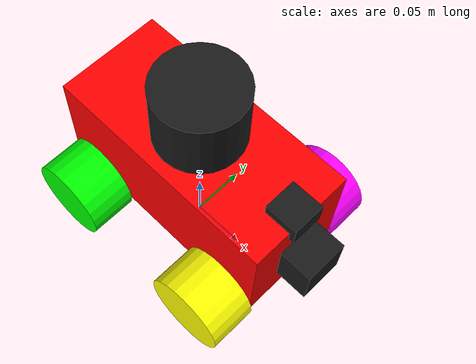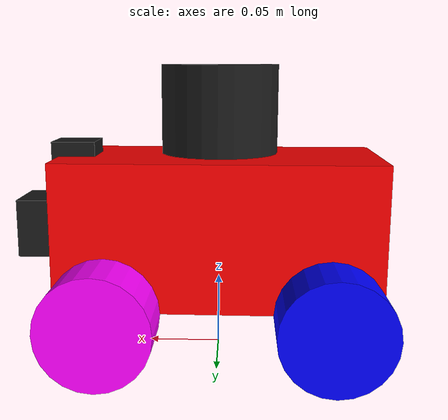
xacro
<?xml version="1.0"?>
<robot name="rrbot" xmlns:xacro="http://www.ros.org/wiki/xacro"
                    xmlns:gz="http://gazebosim.org/schema">

  <!-- ==================== PARAMETERS ==================== -->
  <!-- Pi constant -->
  <xacro:property name="pi_const" value="3.141592653589793"/>

  <!-- Body dimensions -->
  <xacro:property name="a" value="0.22"/>
  <xacro:property name="b" value="0.1"/>
  <xacro:property name="c" value="0.1"/>

  <!-- Wheel and caster dimensions -->
  <!-- Wheel and caster radius -->
  <xacro:property name="r" value="0.0375"/>
  <!-- Wheel width -->
  <xacro:property name="d" value="0.043"/>

  <xacro:property name="s1" value="${b/2+r}"/>
  <xacro:property name="s2" value="${2*r}"/>
  <xacro:property name="s3" value="${2*r}"/>
  <xacro:property name="s4" value="${c/2+d/2}"/>
  <xacro:property name="s5" value="${b/2}"/>

  <!-- ==================== MASS AND INERTIA ==================== -->

  <!-- Material density -->
  <!-- Body material density -->
  <xacro:property name="d1" value="2710.0"/>
  <!-- Wheel material density -->
  <xacro:property name="d2" value="2710.0"/>
  <!-- Caster material density -->
  <xacro:property name="d3" value="2710.0"/>

  <!-- Robot body mass, wheel mass and caster mass -->
  <!-- Body mass -->
  <xacro:property name="m1" value="${d1*a*b*c}"/>
  <!-- Wheel mass -->
  <xacro:property name="m2" value="${d2*pi_const*r*r*d}"/>
  <!-- Caster mass -->
  <xacro:property name="m3" value="${d3*4/3*pi_const*r*r*r}"/>

  <!-- Moment of inertia of robot body -->
  <xacro:property name="Ix_body" value="${m1*(b*b+c*c)/12}"/>
  <xacro:property name="Iy_body" value="${m1*(a*a+c*c)/12}"/>
  <xacro:property name="Iz_body" value="${m1*(a*a+b*b)/12}"/>

  <!-- Moment of inertia of wheel -->
  <xacro:property name="Iz_wheel" value="${m2*r*r/2}"/>
  <xacro:property name="I_wheel" value="${m2*(3*r*r + d*d)/12}"/>

  <!-- This macro defines the inertia properties for the robot body -->
  <xacro:macro name="inertial_body">
    <inertial>
    <origin rpy=" 0 0 0" xyz="0 0 ${s1}"/>
    <mass value="${m1}"/>
    <inertia ixx="${Ix_body}" ixy="0" ixz="0" iyy="${Iy_body}" iyz="0" izz="${Iz_body}"/>
    </inertial>
  </xacro:macro>

  <xacro:macro name="inertial_wheel">
    <inertial>
    <origin rpy="1.570795 0 0" xyz="0 0 0"/>
    <mass value="${m2}"/>
    <inertia ixx="${I_wheel}" ixy="0" ixz="0" iyy="${I_wheel}" iyz="0" izz="${Iz_wheel}"/>
    </inertial>
  </xacro:macro>

  <!-- ==================== LINKS AND JOINTS ==================== -->

  <link name="base_footprint"/>

  <joint name="body_link_joint" type="fixed">
    <parent link="base_footprint"/>
    <child link="body_link"/>
  </joint>

  <!-- Body link -->
  <link name="body_link">
    <visual>
      <geometry>
        <box size="${a} ${c} ${b}"/>
      </geometry>
      <origin xyz="0 0 ${s1}" rpy="0 0 0"/>
      <material name="red">
        <color rgba="1.0 0.0 0.0 1.0"/>
      </material>
    </visual>

    <collision>
      <geometry>
        <box size="${a} ${c} ${b}"/>
      </geometry>
      <origin xyz="0 0 ${s1}" rpy="0 0 0"/>
    </collision>

    <xacro:inertial_body/>
  </link>

  <!-- Back right wheel link -->
  <joint name="rear_right_wheel_joint" type="continuous">
    <parent link="body_link"/>
    <child link="rear_right_wheel_link"/>
    <origin xyz="${-s2} ${-s4} ${r}" rpy="0 0 0"/>
    <axis xyz="0 1 0"/>
    <limit effort="50000" velocity="10"/>
    <dynamics damping="1.0" friction="1.0"/>
  </joint>

  <link name="rear_right_wheel_link">
    <visual>
      <origin xyz="0 0 0" rpy="1.570795 0 0"/>
      <geometry>
        <cylinder radius="${r}" length="${d}"/>
      </geometry>
      <material name="green">
        <color rgba="0.0 1.0 0.0 1.0"/>
      </material>
    </visual>

    <collision>
      <origin xyz="0 0 0" rpy="1.570795 0 0"/>
      <geometry>
        <cylinder radius="${r}" length="${d}"/>
      </geometry>
    </collision>

    <xacro:inertial_wheel/>
  </link>

  <!-- Back left wheel link -->
  <joint name="rear_left_wheel_joint" type="continuous">
    <parent link="body_link"/>
    <child link="rear_left_wheel_link"/>
    <origin xyz="${-s2} ${s4} ${r}" rpy="0 0 0"/>
    <axis xyz="0 1 0"/>
    <limit effort="50000" velocity="10"/>
    <dynamics damping="1.0" friction="1.0"/>
  </joint>

  <link name="rear_left_wheel_link">
    <visual>
      <origin xyz="0 0 0" rpy="1.570795 0 0"/>
      <geometry>
        <cylinder radius="${r}" length="${d}"/>
      </geometry>
      <material name="blue">
        <color rgba="0.0 0.0 1.0 1.0"/>
      </material>
    </visual>

    <collision>
      <origin xyz="0 0 0" rpy="1.570795 0 0"/>
      <geometry>
        <cylinder radius="${r}" length="${d}"/>
      </geometry>
    </collision>

    <xacro:inertial_wheel/>
  </link>

  <!-- Front right wheel link -->
  <joint name="front_right_wheel_joint" type="continuous">
    <parent link="body_link"/>
    <child link="front_right_wheel_link"/>
    <origin xyz="${s2} ${-s4} ${r}" rpy="0 0 0"/>
    <axis xyz="0 1 0"/>
    <limit effort="50000" velocity="10"/>
    <dynamics damping="1.0" friction="1.0"/>
  </joint>

  <link name="front_right_wheel_link">
    <visual>
      <origin xyz="0 0 0" rpy="1.570795 0 0"/>
      <geometry>
        <cylinder radius="${r}" length="${d}"/>
      </geometry>
      <material name="yellow">
        <color rgba="1.0 1.0 0.0 1.0"/>
      </material>
    </visual>

    <collision>
      <origin xyz="0 0 0" rpy="1.570795 0 0"/>
      <geometry>
        <cylinder radius="${r}" length="${d}"/>
      </geometry>
    </collision>

    <xacro:inertial_wheel/>
  </link>

  <!-- Front left wheel link -->
  <joint name="front_left_wheel_joint" type="continuous">
    <parent link="body_link"/>
    <child link="front_left_wheel_link"/>
    <origin xyz="${s2} ${s4} ${r}" rpy="0 0 0"/>
    <axis xyz="0 1 0"/>
    <limit effort="50000" velocity="10"/>
    <dynamics damping="1.0" friction="1.0"/>
  </joint>

  <link name="front_left_wheel_link">
    <visual>
      <origin xyz="0 0 0" rpy="1.570795 0 0"/>
      <geometry>
        <cylinder radius="${r}" length="${d}"/>
      </geometry>
      <material name="magenta">
        <color rgba="1.0 0.0 1.0 1.0"/>
      </material>
    </visual>

    <collision>
      <origin xyz="0 0 0" rpy="1.570795 0 0"/>
      <geometry>
        <cylinder radius="${r}" length="${d}"/>
      </geometry>
    </collision>

    <xacro:inertial_wheel/>
  </link>

  <!-- Friction parameters for wheels -->
    <gazebo reference='rear_right_wheel_link'>
    <collision>
      <surface>
        <friction><ode><mu>1.5</mu><mu2>0.0</mu2><fdir1 gz:expressed_in="base_footprint">1 -1 0</fdir1></ode></friction>
      </surface>
    </collision>
  </gazebo>

    <gazebo reference='rear_left_wheel_link'>
    <collision>
      <surface>
        <friction><ode><mu>1.5</mu><mu2>0.0</mu2><fdir1 gz:expressed_in="base_footprint">1 1 0</fdir1></ode></friction>
      </surface>
    </collision>
  </gazebo>

  <gazebo reference='front_right_wheel_link'>
    <collision>
      <surface>
        <friction><ode><mu>1.5</mu><mu2>0.0</mu2><fdir1 gz:expressed_in="base_footprint">1 1 0</fdir1></ode></friction>
      </surface>
    </collision>
  </gazebo>

  <gazebo reference='front_left_wheel_link'>
    <collision>
      <surface>
        <friction><ode><mu>1.5</mu><mu2>0.0</mu2><fdir1 gz:expressed_in="base_footprint">1 -1 0</fdir1></ode></friction>
      </surface>
    </collision>
  </gazebo>

  <joint name="lidar_joint" type="fixed">
    <parent link="body_link"/>
    <child link="laser"/>
    <origin xyz="0 0 ${s1+s5+0.032}" rpy="0 0 0"/>
  </joint>

  <link name="laser">
    <visual>
      <origin xyz="0 0 0" rpy="0 0 0"/>
      <geometry>
        <cylinder radius="0.04" length="0.06"/>
      </geometry>
      <material name="black">
        <color rgba="0.1 0.1 0.1 1.0"/>
      </material>
    </visual>
    <collision>
      <origin xyz="0 0 0" rpy="0 0 0"/>
      <geometry>
        <cylinder radius="0.04" length="0.06"/>
      </geometry>
    </collision>
    <inertial>
      <mass value="0.2"/>
      <inertia ixx="0.0002" ixy="0" ixz="0" iyy="0.0002" iyz="0" izz="0.0002"/>
    </inertial>
  </link>

  <!-- Gazebo sensor on laser -->
  <gazebo reference="laser">
    <sensor name="lidar" type="gpu_lidar">
      <always_on>true</always_on>
      <update_rate>10</update_rate>
      <visualize>true</visualize>
      <topic>/scan</topic>
      <gz_frame_id>laser</gz_frame_id>
      <lidar>
        <scan>
          <horizontal>
            <samples>720</samples>
            <resolution>1</resolution>
            <min_angle>-3.14159</min_angle>
            <max_angle>3.14159</max_angle>
          </horizontal>
          <vertical>
            <samples>1</samples>
            <resolution>1</resolution>
            <min_angle>0.0</min_angle>
            <max_angle>0.0</max_angle>
          </vertical>
        </scan>
        <range>
          <min>0.12</min>
          <max>12.0</max>
          <resolution>0.01</resolution>
        </range>
      </lidar>
    </sensor>
  </gazebo>

    <!-- Camera link -->
  <joint name="camera_joint" type="fixed">
    <parent link="body_link"/>
    <child link="camera_link"/>
    <origin xyz="${a/2} 0 ${s1}" rpy="0 0 0"/>
  </joint>

  <link name="camera_link">
    <visual>
      <geometry>
        <box size="0.06 0.04 0.04"/>
      </geometry>
      <material name="black">
        <color rgba="0.1 0.1 0.1 1.0"/>
      </material>
    </visual>
    <collision>
      <geometry>
        <box size="0.06 0.04 0.04"/>
      </geometry>
    </collision>
    <inertial>
      <mass value="0.15"/>
      <inertia ixx="0.0001" ixy="0" ixz="0" iyy="0.0001" iyz="0" izz="0.0001"/>
    </inertial>
  </link>

  <!-- Gazebo camera sensor -->
  <gazebo reference="camera_link">
    <sensor name="front_camera" type="camera">
      <always_on>true</always_on>
      <update_rate>20</update_rate>
      <visualize>true</visualize>
      <topic>/camera/image_raw</topic>
      <camera_info_topic>/camera/camera_info</camera_info_topic>
      <thermal_camera>
        <horizontal_fov>1.3962634</horizontal_fov>
        <image>
          <width>640</width>
          <height>480</height>
          <format>L16</format>
        </image>
        <clip>
          <near>0.05</near>
          <far>50.0</far>
        </clip>
        <min_temp>293.15</min_temp>
        <max_temp>373.15</max_temp>
        <resolution>0.1</resolution>  <!-- K per level -->
      </thermal_camera>
    </sensor>
  </gazebo>

    <!-- IMU link -->
  <joint name="imu_joint" type="fixed">
    <parent link="body_link"/>
    <child link="imu_link"/>
    <origin xyz="0.1 0 ${s1 + s5}" rpy="0 0 0"/>
  </joint>

  <link name="imu_link">
    <visual>
      <geometry>
        <box size="0.03 0.03 0.02"/>
      </geometry>
      <material name="black">
        <color rgba="0.1 0.1 0.1 1.0"/>
      </material>
    </visual>
    <collision>
      <geometry>
        <box size="0.03 0.03 0.02"/>
      </geometry>
    </collision>
    <inertial>
      <mass value="0.05"/>
      <inertia ixx="1e-5" ixy="0" ixz="0" iyy="1e-5" iyz="0" izz="1e-5"/>
    </inertial>
  </link>

  <!-- Gazebo IMU sensor -->
  <gazebo reference="imu_link">
    <sensor name="imu_sensor" type="imu">
      <always_on>true</always_on>
      <update_rate>100</update_rate>
      <topic>/imu</topic>
      <imu>
        <angular_velocity>
          <x><noise type="gaussian"><mean>0.0</mean><stddev>0.0002</stddev></noise></x>
          <y><noise type="gaussian"><mean>0.0</mean><stddev>0.0002</stddev></noise></y>
          <z><noise type="gaussian"><mean>0.0</mean><stddev>0.0002</stddev></noise></z>
        </angular_velocity>
        <linear_acceleration>
          <x><noise type="gaussian"><mean>0.0</mean><stddev>0.017</stddev></noise></x>
          <y><noise type="gaussian"><mean>0.0</mean><stddev>0.017</stddev></noise></y>
          <z><noise type="gaussian"><mean>0.0</mean><stddev>0.017</stddev></noise></z>
        </linear_acceleration>
      </imu>
    </sensor>
  </gazebo>

  <!-- ==================== GAZEBO PLUGINS ==================== -->

  <gazebo>
    <!-- MecanumDrive plugin -->
    <plugin filename="gz-sim-mecanum-drive-system"
            name="gz::sim::systems::MecanumDrive">

      <front_left_joint>front_left_wheel_joint</front_left_joint>
      <front_right_joint>front_right_wheel_joint</front_right_joint>
      <back_left_joint>rear_left_wheel_joint</back_left_joint>
      <back_right_joint>rear_right_wheel_joint</back_right_joint>

      <wheelbase>${2*s2}</wheelbase>               <!-- front-back distance -->
      <wheel_separation>${2*s4}</wheel_separation> <!-- left-right distance -->
      <wheel_radius>${r}</wheel_radius>

      <topic>/model/test_robot/cmd_vel</topic>
      <odom_topic>/model/test_robot/odometry</odom_topic>
      <tf_topic>/model/test_robot/tf</tf_topic>

      <frame_id>odom</frame_id>
      <child_frame_id>base_footprint</child_frame_id>
      <odom_publish_frequency>50</odom_publish_frequency>
    </plugin>

    <!-- JointStatePublisher plugin -->
    <plugin filename="gz-sim-joint-state-publisher-system"
            name="gz::sim::systems::JointStatePublisher">
    </plugin>

    <!-- Lidar Pitch Controller -->
    <plugin filename="gz-sim-joint-position-controller-system"
            name="gz::sim::systems::JointPositionController">
      <joint_name>lidar_joint</joint_name>
      <p_gain>10.0</p_gain>
      <i_gain>0.1</i_gain>
      <d_gain>0.1</d_gain>
    </plugin>
  </gazebo>
</robot>
